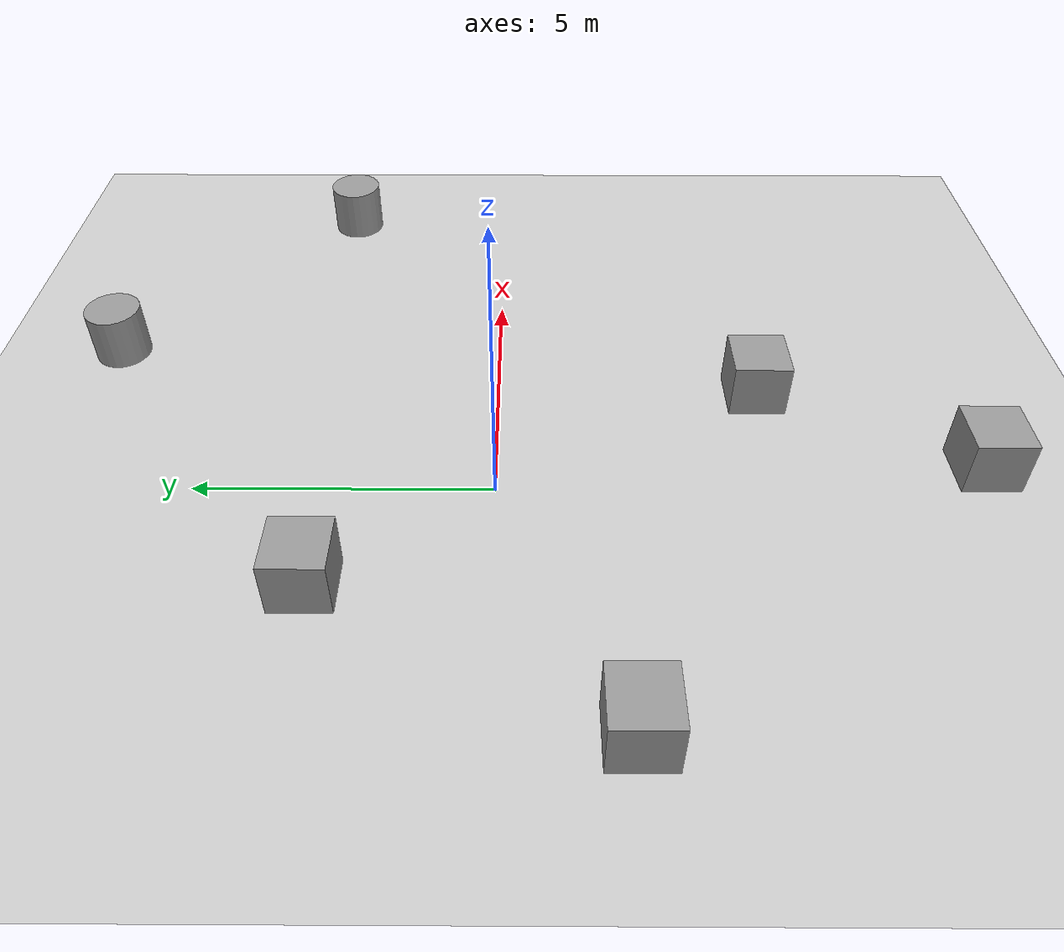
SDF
<sdf version="1.7">
 <world name="default">
  <model name="ground_plane">
   <static>1</static>
   <link name="link">
    <collision name="collision">
     <geometry><plane><normal>0 0 1</normal><size>100 100</size></plane></geometry>
     <surface><friction><ode><mu>100</mu><mu2>50</mu2></ode></friction></surface>
    </collision>
    <visual name="visual">
     <cast_shadows>0</cast_shadows>
     <geometry><plane><normal>0 0 1</normal><size>100 100</size></plane></geometry>
     <material>
      <script><uri>file://media/materials/scripts/gazebo.material</uri><name>Gazebo/Grey</name></script>
     </material>
    </visual>
   </link>
  </model>
  <light name="sun" type="directional">
   <pose>0 0 10 0 -0 0</pose>
   <diffuse>0.8 0.8 0.8 1</diffuse>
   <specular>0.2 0.2 0.2 1</specular>
   <attenuation>
    <range>1000</range>
    <constant>0.9</constant>
    <linear>0.01</linear>
    <quadratic>0.001</quadratic>
   </attenuation>
   <direction>-0.5 0.1 -0.9</direction>
   <spot><inner_angle>0</inner_angle><outer_angle>0</outer_angle><falloff>0</falloff></spot>
  </light>
  <scene><ambient>0 0 0 1</ambient><shadows>0</shadows><background>0.7 0.7 0.7 1</background></scene>
  <gravity>0 0 -9.8</gravity>
  <magnetic_field>6e-06 2.3e-05 -4.2e-05</magnetic_field>
  <atmosphere type="adiabatic"/>
  <physics type="ode">
   <max_step_size>0.001</max_step_size>
   <real_time_factor>1</real_time_factor>
   <real_time_update_rate>1000</real_time_update_rate>
  </physics>
  <spherical_coordinates>
   <surface_model>EARTH_WGS84</surface_model>
   <latitude_deg>0</latitude_deg>
   <longitude_deg>0</longitude_deg>
   <elevation>0</elevation>
   <heading_deg>0</heading_deg>
  </spherical_coordinates>
  <model name="unit_box">
   <pose>-1.99826 2.80041 0.499995 -1e-05 -0 0.000824</pose>
   <link name="link">
    <inertial>
     <mass>1</mass>
     <inertia>
      <ixx>0.166667</ixx>
      <ixy>0</ixy>
      <ixz>0</ixz>
      <iyy>0.166667</iyy>
      <iyz>0</iyz>
      <izz>0.166667</izz>
     </inertia>
    </inertial>
    <collision name="collision"><geometry><box><size>1 1 1</size></box></geometry></collision>
    <visual name="visual">
     <geometry><box><size>1 1 1</size></box></geometry>
     <material>
      <script><name>Gazebo/Grey</name><uri>file://media/materials/scripts/gazebo.material</uri></script>
     </material>
    </visual>
   </link>
  </model>
  <model name="unit_cylinder">
   <pose>3.64193 7.18856 0.499992 -3e-06 -4e-06 -0</pose>
   <link name="link">
    <inertial>
     <mass>1</mass>
     <inertia><ixx>0.145833</ixx><ixy>0</ixy><ixz>0</ixz><iyy>0.145833</iyy><iyz>0</iyz><izz>0.125</izz></inertia>
    </inertial>
    <collision name="collision">
     <geometry><cylinder><radius>0.5</radius><length>1</length></cylinder></geometry>
    </collision>
    <visual name="visual">
     <geometry><cylinder><radius>0.5</radius><length>1</length></cylinder></geometry>
     <material>
      <script><name>Gazebo/Grey</name><uri>file://media/materials/scripts/gazebo.material</uri></script>
     </material>
    </visual>
   </link>
  </model>
  <model name="unit_cylinder_0">
   <pose>8.22357 3.26282 0.499993 -3e-06 -3e-06 0</pose>
   <link name="link">
    <inertial>
     <mass>1</mass>
     <inertia><ixx>0.145833</ixx><ixy>0</ixy><ixz>0</ixz><iyy>0.145833</iyy><iyz>0</iyz><izz>0.125</izz></inertia>
    </inertial>
    <collision name="collision">
     <geometry><cylinder><radius>0.5</radius><length>1</length></cylinder></geometry>
    </collision>
    <visual name="visual">
     <geometry><cylinder><radius>0.5</radius><length>1</length></cylinder></geometry>
     <material>
      <script><name>Gazebo/Grey</name><uri>file://media/materials/scripts/gazebo.material</uri></script>
     </material>
    </visual>
   </link>
  </model>
  <model name="unit_box_0">
   <pose>2.39991 -4.59972 0.499995 -1e-05 -0 -0.000119</pose>
   <link name="link">
    <inertial>
     <mass>1</mass>
     <inertia>
      <ixx>0.166667</ixx>
      <ixy>0</ixy>
      <ixz>0</ixz>
      <iyy>0.166667</iyy>
      <iyz>0</iyz>
      <izz>0.166667</izz>
     </inertia>
    </inertial>
    <collision name="collision"><geometry><box><size>1 1 1</size></box></geometry></collision>
    <visual name="visual">
     <geometry><box><size>1 1 1</size></box></geometry>
     <material>
      <script><name>Gazebo/Grey</name><uri>file://media/materials/scripts/gazebo.material</uri></script>
     </material>
    </visual>
   </link>
  </model>
  <model name="unit_box_1">
   <pose>0.500123 -8.13785 0.499995 -1e-05 -0 0</pose>
   <link name="link">
    <inertial>
     <mass>1</mass>
     <inertia>
      <ixx>0.166667</ixx>
      <ixy>0</ixy>
      <ixz>0</ixz>
      <iyy>0.166667</iyy>
      <iyz>0</iyz>
      <izz>0.166667</izz>
     </inertia>
    </inertial>
    <collision name="collision"><geometry><box><size>1 1 1</size></box></geometry></collision>
    <visual name="visual">
     <geometry><box><size>1 1 1</size></box></geometry>
     <material>
      <script><name>Gazebo/Grey</name><uri>file://media/materials/scripts/gazebo.material</uri></script>
     </material>
    </visual>
   </link>
  </model>
  <model name="unit_box_2">
   <pose>-4.47187 -2.00603 0.5 0 -0 0</pose>
   <link name="link">
    <inertial>
     <mass>1</mass>
     <inertia>
      <ixx>0.166667</ixx>
      <ixy>0</ixy>
      <ixz>0</ixz>
      <iyy>0.166667</iyy>
      <iyz>0</iyz>
      <izz>0.166667</izz>
     </inertia>
    </inertial>
    <collision name="collision"><geometry><box><size>1 1 1</size></box></geometry></collision>
    <visual name="visual">
     <geometry><box><size>1 1 1</size></box></geometry>
     <material>
      <script><name>Gazebo/Grey</name><uri>file://media/materials/scripts/gazebo.material</uri></script>
     </material>
    </visual>
   </link>
  </model>
 </world>
</sdf>
